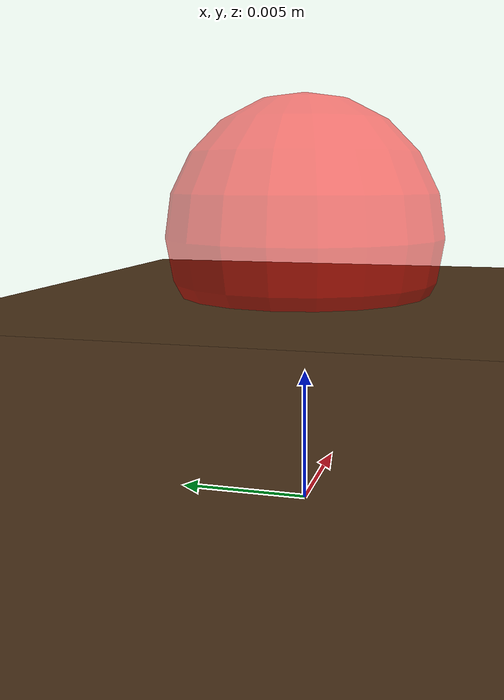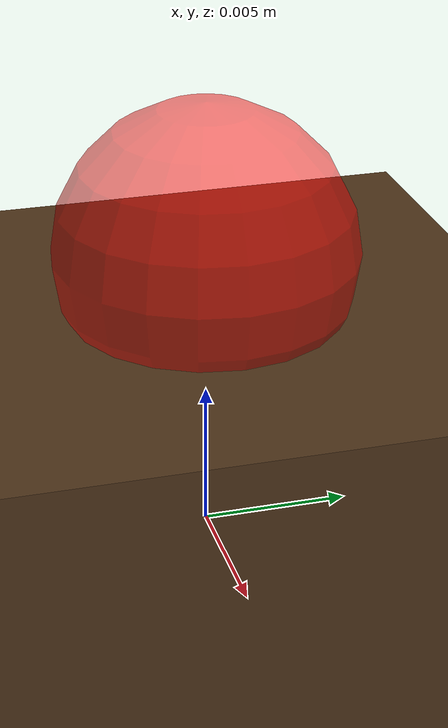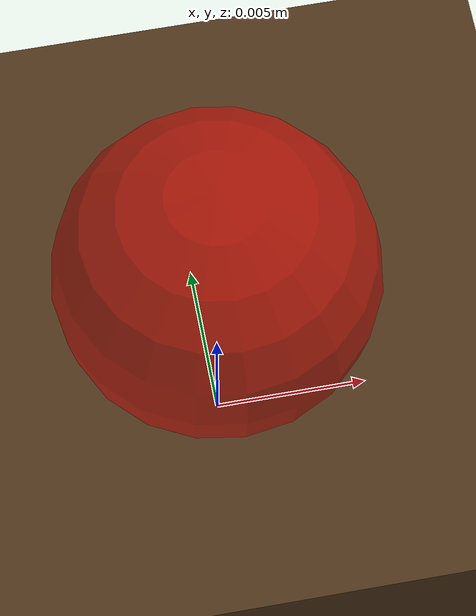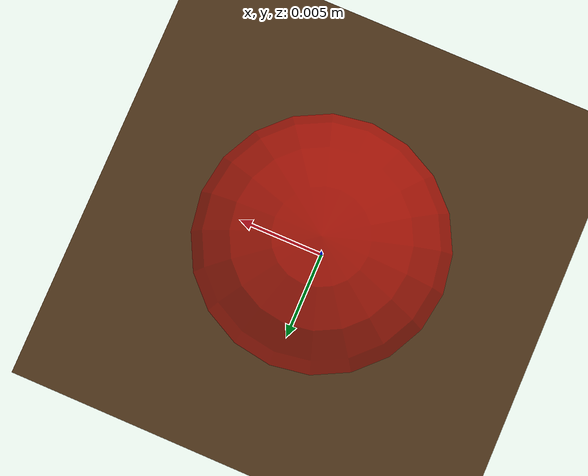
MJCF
<mujoco model="mat">
    <compiler angle="degree" coordinate="local"/>
    <default>
        <!-- 默认的物理属性设置 -->
        <geom rgba="0.2 0.6 0.2 1" contype="1" conaffinity="1" condim="3" friction="1 0.005 0.0001"/>
    </default>

    <asset>
    <texture file="texture_map.png" name="tex-textured" type="2d" />
    <mesh file="visual/mat_vis.msh" name="textured_vis" scale="0.3 0.3 .03" />
    </asset>

    <worldbody>
        <!-- 正确设置 body 和 geom -->
        <body>
        <body name="object">
        <geom solimp="0.998 0.998 0.001" solref="0.001 1" density="5000" friction="0.95 0.3 0.1" type="box" size="0.05 0.05 0.008" rgba = "0.3 0.2 0.1 1" conaffinity="1" contype="1" group="1"/>
        <geom solimp="0.998 0.998 0.001" solref="0.001 1" density="5000" friction="0.95 0.3 0.1" type="box" quat="0.00000 0.00000 0.70711 0.70711" size="0.00259 0.00405 0.01848" group="0" rgba="0.8 0.8 0.8 0" /></body>
        <site rgba="0 0 0 0" size="0.005" pos="0 0 -0.06" name="bottom_site" />
        <site rgba=".5 .5 .5 1" size="0.005" pos="0 0 0.002" name="top_site" />
        <site rgba="0 0 0 0" size="0.005" pos="0.025 0.025 0" name="horizontal_radius_site" />
        <site name="on_mat_region" pos="0 0 0.01" size="0.005" rgba="1 0 0 0.5" />
        </body>
    </worldbody>
</mujoco>
